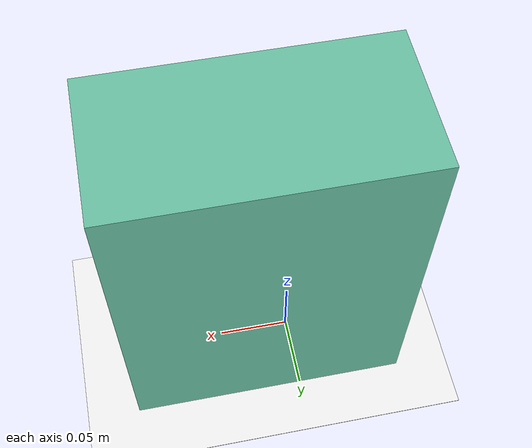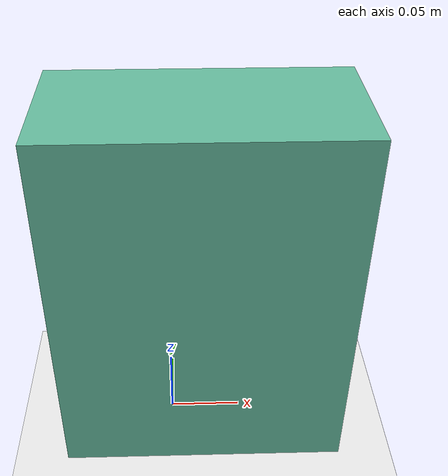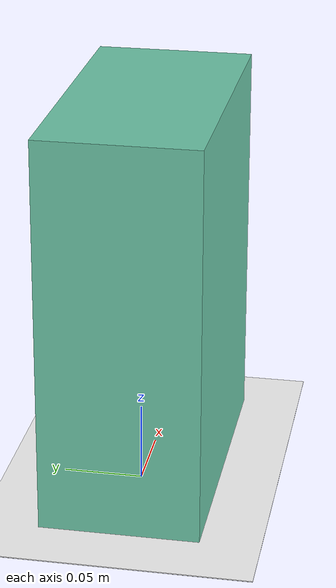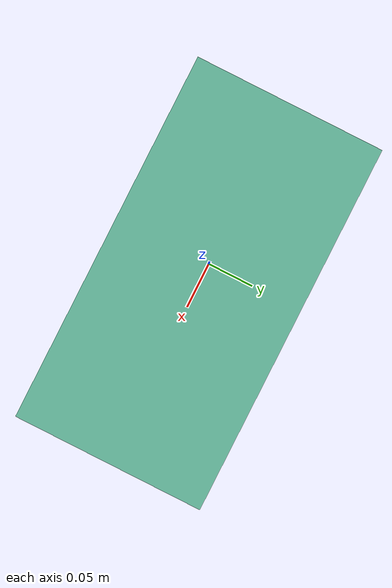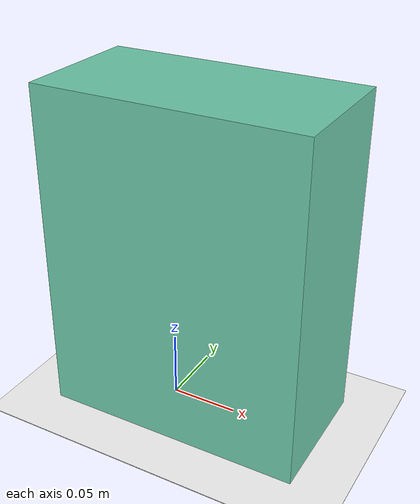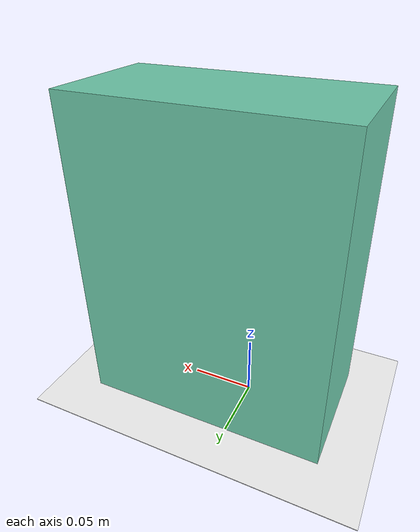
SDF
<?xml version="1.0" ?>
<sdf version="1.4">
  <world name="default">
    <gui>
      <camera name="user_camera">
        <pose>0 0 1.6 0 1.5708 -3.1415</pose>
      </camera>
    </gui>
    <scene>
      <ambient>0.5 0.5 0.5 1.0</ambient>
      <shadows>0</shadows>
    </scene>
    <include>
      <uri>model://ground_plane</uri>
    </include>
    <include>
      <uri>model://sun</uri>
    </include>
    <include>
      <uri>model://racetrack6</uri>
      <name>race_track6</name>
      <pose>0 0 0 0 0 0</pose>
    </include>

    <model name='obstacle'>
    <pose frame=''>0.0225 0 0 0 -0 0</pose>
    <link name='Wall_0'>
      <collision name='Wall_0_Collision'>
        <geometry>
          <box>
            <size>0.195 0.1 0.25</size>
          </box>
        </geometry>
        <pose frame=''>0 0 0.125 0 -0 0</pose>
      </collision>
      <visual name='Wall_0_Visual'>
        <pose frame=''>0 0 0.125 0 -0 0</pose>
        <geometry>
          <box>
            <size>0.195 0.1 0.25</size>
          </box>
        </geometry>
        <material>
          <script>
            <uri>file://media/materials/scripts/gazebo.material</uri>
            <name>Gazebo/Grey</name>
          </script>
          <ambient>0.435294 0.796078 0.67451 1</ambient>
        </material>
        <meta>
          <layer>0</layer>
        </meta>
      </visual>
      <pose frame=''>0 0 0 0 -0 0</pose>
    </link>
    <static>1</static>
  </model>

  </world>
</sdf>

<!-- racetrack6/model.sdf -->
<sdf version='1.6'>
  <model name='race_track6'>
    <static>true</static>
    <link name='link'>
      <visual name='visual'>
        <geometry>
          <box>
            <size>0.712 1.462 0.000553</size>
          </box>
        </geometry>
        <material>
          <script>
            <name>RaceTrack6/track6</name>
	    <uri>model://racetrack6/materials/scripts</uri>
            <uri>model://racetrack6/materials/textures</uri>
          </script>
          <ambient>1 1 1 1</ambient>
          <diffuse>1 1 1 1</diffuse>
          <specular>0.01 0.01 0.01 1</specular>
          <emissive>1 1 1 1</emissive>
        </material>
        <transparency>0</transparency>
      </visual>
      <collision name='collision'>
        <geometry>
          <box>
            <size>0.712 1.462 0.000553</size>
          </box>
        </geometry>
	<surface>
          <friction>
            <ode>
              <mu>100</mu>
              <mu2>50</mu2>
            </ode>
          </friction>
        </surface>
      </collision>
    </link>
  </model>
</sdf>
